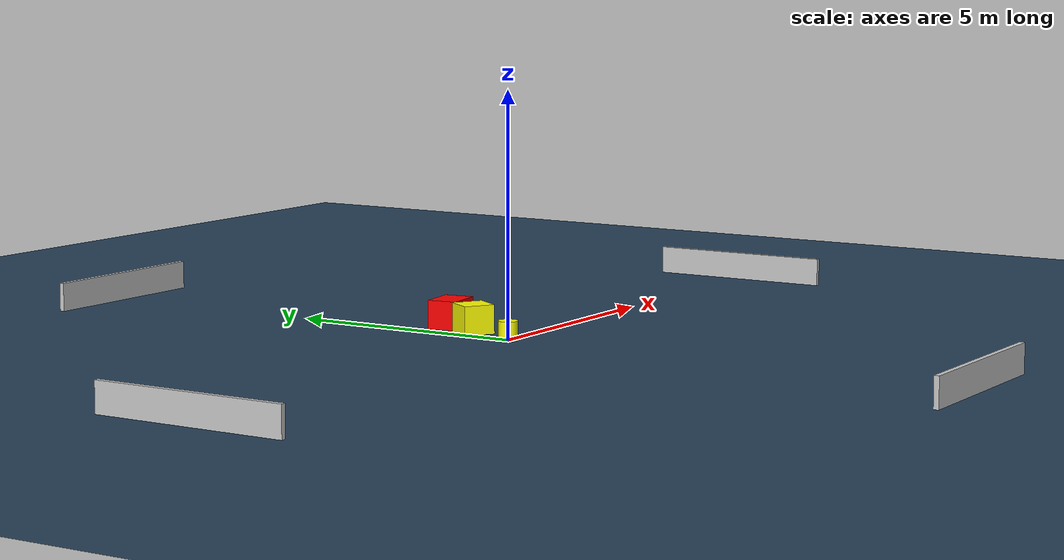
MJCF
<?xml version="1.0" ?>
<mujoco model="generated_environment">
  <option timestep="0.01" integrator="RK4" cone="elliptic"/>
  <default>
    <geom density="1"/>
  </default>
  <asset>
    <texture builtin="gradient" height="3072" name="skybox" rgb1="0.3 0.5 0.7" rgb2="0 0 0" type="skybox" width="512"/>
    <texture builtin="checker" height="300" name="groundplane" rgb1="0.2 0.3 0.4" rgb2="0.1 0.2 0.3" type="2d" width="300"/>
    <material name="groundplane" reflectance="0.2" texrepeat="5 5" texture="groundplane"/>
  </asset>
  <worldbody>
    <light dir="0 0 -1" directional="true" pos="0 0 1.5"/>
    <geom condim="3" friction="0.5 0.005 0.001" material="groundplane" name="floor" pos="0 0 0" size="0 0 0.05" type="plane"/>
    <body name="walls">
      <geom name="wall_1" condim="4" pos="-10.0 0.0 0.3" rgba="0.800000011920929 0.800000011920929 0.800000011920929 1.0" size="0.05 2.0 0.3" type="box"/>
      <geom name="wall_2" condim="4" pos="10.0 0.0 0.3" rgba="0.800000011920929 0.800000011920929 0.800000011920929 1.0" size="0.05 2.0 0.3" type="box"/>
      <geom name="wall_3" condim="4" pos="0.0 -10.0 0.3" rgba="0.800000011920929 0.800000011920929 0.800000011920929 1.0" size="2.0 0.05 0.3" type="box"/>
      <geom name="wall_4" condim="4" pos="0.0 10.0 0.3" rgba="0.800000011920929 0.800000011920929 0.800000011920929 1.0" size="2.0 0.05 0.3" type="box"/>
    </body>
    <body name="robot">
      <joint name="joint_x" type="slide" pos="0 0 0" axis="1 0 0"/>
      <joint name="joint_y" type="slide" pos="0 0 0" axis="0 1 0"/>
      <geom name="robot" type="cylinder" pos="0.0 0.0 0.2" size="0.2 0.2 0.0" mass="5.0" friction="1.0 0.005 0.0001" condim="4" rgba="1.0 1.0 0.0 1.0"/>
    </body>
    <body name="obstacle_1_movable">
      <geom name="obstacle_1_movable" condim="4" pos="0.38818308850182626 1.0832440940616668 0.3" euler="0 0 328.3226988209937" friction="0.0 0.005 0.001" rgba="1.0 1.0 0.0 1.0" size="0.3319002706307012 0.3030097249528195 0.3" type="box" mass="0.1"/>
      <joint type="free"/>
    </body>
    <body name="obstacle_2_static">
      <geom name="obstacle_2_static" condim="4" pos="0.715813854764127 1.8527745209564872 0.3" euler="0 0 187.3613853204756" friction="0.0 0.005 0.001" rgba="1.0 0.0 0.0 1.0" size="0.4115784164265861 0.31041788213178473 0.3" type="box"/>
    </body>
  </worldbody>
  <actuator>
    <motor name="actuator_x" joint="joint_x" gear="1" ctrlrange="-1 1"/>
    <motor name="actuator_y" joint="joint_y" gear="1" ctrlrange="-1 1"/>
  </actuator>
</mujoco>
